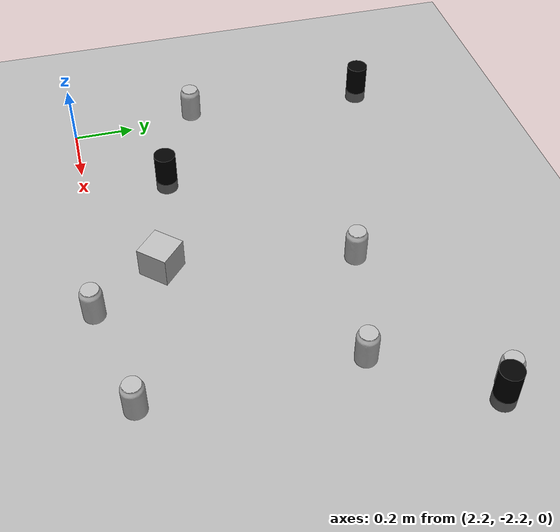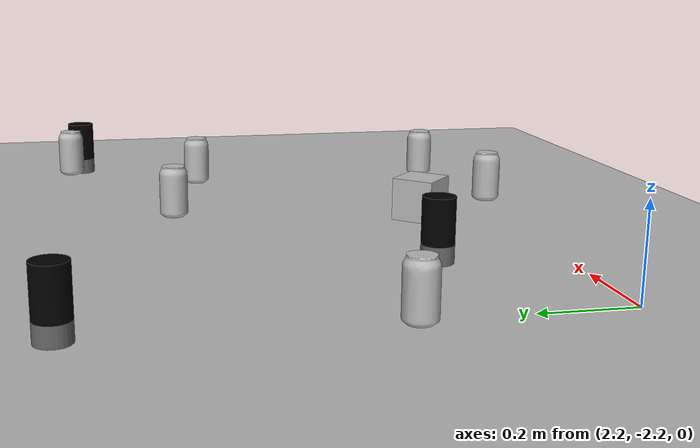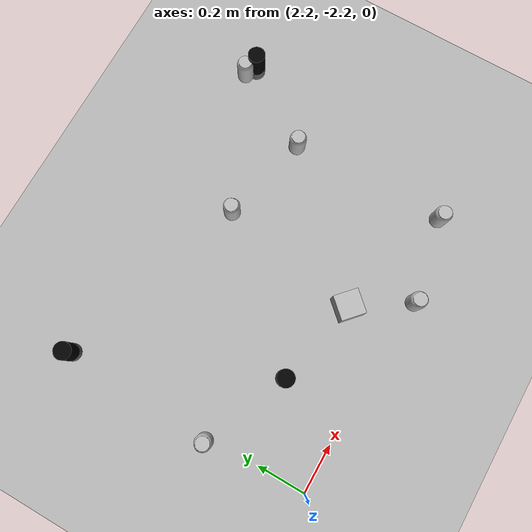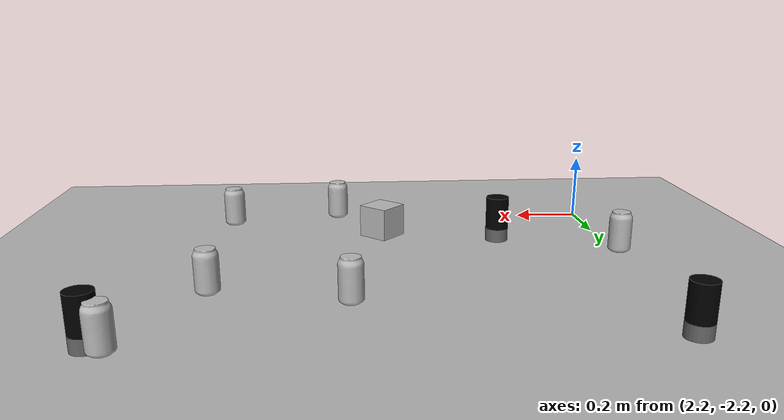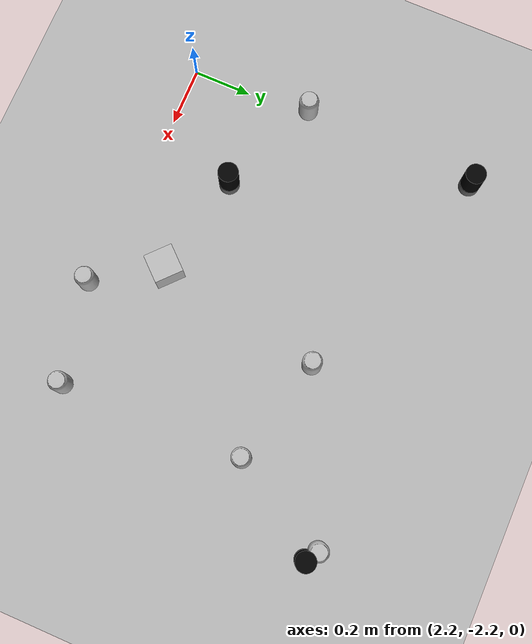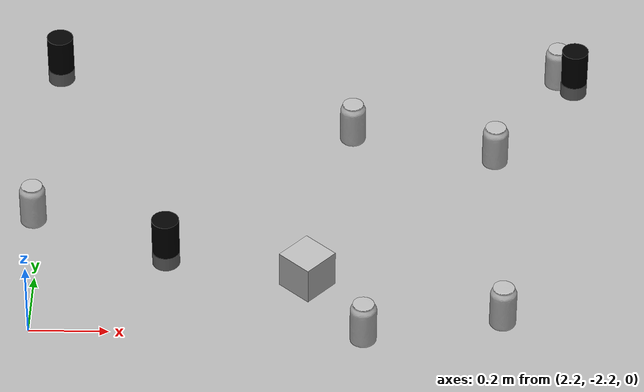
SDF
<sdf version="1.9">
 <world name="default">
  <model name="ground_plane">
   <static>true</static>
   <link name="link">
    <collision name="collision">
     <geometry><plane><normal>0 0 1</normal><size>100 100</size></plane></geometry>
     <surface>
      <contact><collide_bitmask>65535</collide_bitmask></contact>
      <friction><ode><mu>100</mu><mu2>50</mu2></ode></friction>
     </surface>
    </collision>
    <visual name="visual">
     <cast_shadows>false</cast_shadows>
     <geometry><plane><normal>0 0 1</normal><size>100 100</size></plane></geometry>
     <material>
      <ambient>0.3 0.3 0.3 1</ambient>
      <diffuse>0.7 0.7 0.7 1</diffuse>
      <specular>0.01 0.01 0.01 1</specular>
     </material>
    </visual>
    <inertial>
     <mass>1</mass>
     <inertia><ixx>1</ixx><ixy>0</ixy><ixz>0</ixz><iyy>1</iyy><iyz>0</iyz><izz>1</izz></inertia>
    </inertial>
   </link>
  </model>
  <model name="coke_2">
   <pose>2.1814229748695912 -1.7816322041547088 0 0 0 1.5579393369413672</pose>
   <link name="link">
    <inertial>
     <pose>0 0 0.06 0 0 0</pose>
     <mass>0.014</mass>
     <inertia>
      <ixx>0.00055575</ixx>
      <ixy>0</ixy>
      <ixz>0</ixz>
      <iyy>0.00055575</iyy>
      <iyz>0</iyz>
      <izz>0.0001755</izz>
     </inertia>
    </inertial>
    <collision name="collision">
     <pose>0.003937 0.0047244 -0.18 0 0 0</pose>
     <geometry><mesh><uri>coke_can.dae</uri></mesh></geometry>
     <surface>
      <friction><ode><mu>30.0</mu><mu2>30.0</mu2></ode></friction>
      <contact>
       <ode><kp>10000000.0</kp><kd>1.0</kd><min_depth>0.001</min_depth><max_vel>0.1</max_vel></ode>
      </contact>
     </surface>
    </collision>
    <visual name="visual">
     <pose>0.003937 0.0047244 -0.18 0 0 0</pose>
     <geometry><mesh><uri>coke_can.dae</uri></mesh></geometry>
     <plugin filename="ignition-gazebo-label-system" name="ignition::gazebo::systems::Label">
      <label>20</label>
     </plugin>
    </visual>
   </link>
  </model>
  <model name="coke_3">
   <pose>3.3809008028931506 -2.1583355610192236 0 0 0 6.003553893303458</pose>
   <link name="link">
    <inertial>
     <pose>0 0 0.06 0 0 0</pose>
     <mass>0.014</mass>
     <inertia>
      <ixx>0.00055575</ixx>
      <ixy>0</ixy>
      <ixz>0</ixz>
      <iyy>0.00055575</iyy>
      <iyz>0</iyz>
      <izz>0.0001755</izz>
     </inertia>
    </inertial>
    <collision name="collision">
     <pose>0.003937 0.0047244 -0.18 0 0 0</pose>
     <geometry><mesh><uri>coke_can.dae</uri></mesh></geometry>
     <surface>
      <friction><ode><mu>30.0</mu><mu2>30.0</mu2></ode></friction>
      <contact>
       <ode><kp>10000000.0</kp><kd>1.0</kd><min_depth>0.001</min_depth><max_vel>0.1</max_vel></ode>
      </contact>
     </surface>
    </collision>
    <visual name="visual">
     <pose>0.003937 0.0047244 -0.18 0 0 0</pose>
     <geometry><mesh><uri>coke_can.dae</uri></mesh></geometry>
     <plugin filename="ignition-gazebo-label-system" name="ignition::gazebo::systems::Label">
      <label>20</label>
     </plugin>
    </visual>
   </link>
  </model>
  <model name="coke_4">
   <pose>3.5441015637375815 -1.1767779151665994 0 0 0 2.0650444180560794</pose>
   <link name="link">
    <inertial>
     <pose>0 0 0.06 0 0 0</pose>
     <mass>0.014</mass>
     <inertia>
      <ixx>0.00055575</ixx>
      <ixy>0</ixy>
      <ixz>0</ixz>
      <iyy>0.00055575</iyy>
      <iyz>0</iyz>
      <izz>0.0001755</izz>
     </inertia>
    </inertial>
    <collision name="collision">
     <pose>0.003937 0.0047244 -0.18 0 0 0</pose>
     <geometry><mesh><uri>coke_can.dae</uri></mesh></geometry>
     <surface>
      <friction><ode><mu>30.0</mu><mu2>30.0</mu2></ode></friction>
      <contact>
       <ode><kp>10000000.0</kp><kd>1.0</kd><min_depth>0.001</min_depth><max_vel>0.1</max_vel></ode>
      </contact>
     </surface>
    </collision>
    <visual name="visual">
     <pose>0.003937 0.0047244 -0.18 0 0 0</pose>
     <geometry><mesh><uri>coke_can.dae</uri></mesh></geometry>
     <plugin filename="ignition-gazebo-label-system" name="ignition::gazebo::systems::Label">
      <label>20</label>
     </plugin>
    </visual>
   </link>
  </model>
  <model name="coke_5">
   <pose>3.000026214638232 -1.4269974407189119 0 0 0 6.096186986916386</pose>
   <link name="link">
    <inertial>
     <pose>0 0 0.06 0 0 0</pose>
     <mass>0.014</mass>
     <inertia>
      <ixx>0.00055575</ixx>
      <ixy>0</ixy>
      <ixz>0</ixz>
      <iyy>0.00055575</iyy>
      <iyz>0</iyz>
      <izz>0.0001755</izz>
     </inertia>
    </inertial>
    <collision name="collision">
     <pose>0.003937 0.0047244 -0.18 0 0 0</pose>
     <geometry><mesh><uri>coke_can.dae</uri></mesh></geometry>
     <surface>
      <friction><ode><mu>30.0</mu><mu2>30.0</mu2></ode></friction>
      <contact>
       <ode><kp>10000000.0</kp><kd>1.0</kd><min_depth>0.001</min_depth><max_vel>0.1</max_vel></ode>
      </contact>
     </surface>
    </collision>
    <visual name="visual">
     <pose>0.003937 0.0047244 -0.18 0 0 0</pose>
     <geometry><mesh><uri>coke_can.dae</uri></mesh></geometry>
     <plugin filename="ignition-gazebo-label-system" name="ignition::gazebo::systems::Label">
      <label>20</label>
     </plugin>
    </visual>
   </link>
  </model>
  <model name="coke_6">
   <pose>3.0334758052280004 -2.2264213790818657 0 0 0 0.26307758470738635</pose>
   <link name="link">
    <inertial>
     <pose>0 0 0.06 0 0 0</pose>
     <mass>0.014</mass>
     <inertia>
      <ixx>0.00055575</ixx>
      <ixy>0</ixy>
      <ixz>0</ixz>
      <iyy>0.00055575</iyy>
      <iyz>0</iyz>
      <izz>0.0001755</izz>
     </inertia>
    </inertial>
    <collision name="collision">
     <pose>0.003937 0.0047244 -0.18 0 0 0</pose>
     <geometry><mesh><uri>coke_can.dae</uri></mesh></geometry>
     <surface>
      <friction><ode><mu>30.0</mu><mu2>30.0</mu2></ode></friction>
      <contact>
       <ode><kp>10000000.0</kp><kd>1.0</kd><min_depth>0.001</min_depth><max_vel>0.1</max_vel></ode>
      </contact>
     </surface>
    </collision>
    <visual name="visual">
     <pose>0.003937 0.0047244 -0.18 0 0 0</pose>
     <geometry><mesh><uri>coke_can.dae</uri></mesh></geometry>
     <plugin filename="ignition-gazebo-label-system" name="ignition::gazebo::systems::Label">
      <label>20</label>
     </plugin>
    </visual>
   </link>
  </model>
  <model name="coke_7">
   <pose>3.371847778742837 -1.5176617158855559 0 0 0 0.3342988323338399</pose>
   <link name="link">
    <inertial>
     <pose>0 0 0.06 0 0 0</pose>
     <mass>0.014</mass>
     <inertia>
      <ixx>0.00055575</ixx>
      <ixy>0</ixy>
      <ixz>0</ixz>
      <iyy>0.00055575</iyy>
      <iyz>0</iyz>
      <izz>0.0001755</izz>
     </inertia>
    </inertial>
    <collision name="collision">
     <pose>0.003937 0.0047244 -0.18 0 0 0</pose>
     <geometry><mesh><uri>coke_can.dae</uri></mesh></geometry>
     <surface>
      <friction><ode><mu>30.0</mu><mu2>30.0</mu2></ode></friction>
      <contact>
       <ode><kp>10000000.0</kp><kd>1.0</kd><min_depth>0.001</min_depth><max_vel>0.1</max_vel></ode>
      </contact>
     </surface>
    </collision>
    <visual name="visual">
     <pose>0.003937 0.0047244 -0.18 0 0 0</pose>
     <geometry><mesh><uri>coke_can.dae</uri></mesh></geometry>
     <plugin filename="ignition-gazebo-label-system" name="ignition::gazebo::systems::Label">
      <label>20</label>
     </plugin>
    </visual>
   </link>
  </model>
  <model name="light_0">
   <pose>3.5879323729811583 -1.2050745597364338 0 0 0 0</pose>
   <static>false</static>
   <link name="base">
    <pose>0.0 0.0 0.02 0.0 0 0</pose>
    <collision name="collision">
     <geometry><cylinder><radius>.035</radius><length>.04</length></cylinder></geometry>
    </collision>
    <inertial>
     <mass>10</mass>
     <inertia>
      <ixx>0.004395833333333333</ixx>
      <ixy>0.0</ixy>
      <ixz>0.0</ixz>
      <iyy>0.004395833333333333</iyy>
      <iyz>0.0</iyz>
      <izz>0.006125</izz>
     </inertia>
    </inertial>
    <visual name="visual">
     <geometry><cylinder><radius>.035</radius><length>.04</length></cylinder></geometry>
     <material>
      <ambient>0.4 0.4 0.4 1</ambient>
      <diffuse>0.4 0.4 0.4 1</diffuse>
      <specular>0.4 0.4 0.4 0</specular>
      <emissive>0.6 0.6 0.4 1</emissive>
     </material>
     <plugin filename="ignition-gazebo-label-system" name="ignition::gazebo::systems::Label">
      <label>10</label>
     </plugin>
    </visual>
   </link>
   <link name="light">
    <pose>0 0. 0.09 0 0 0</pose>
    <collision name="collision">
     <geometry><cylinder><radius>.035</radius><length>.1</length></cylinder></geometry>
    </collision>
    <inertial>
     <mass>10</mass>
     <inertia>
      <ixx>0.01139583333333333</ixx>
      <ixy>0.0</ixy>
      <ixz>0.0</ixz>
      <iyy>0.01139583333333333</iyy>
      <iyz>0.0</iyz>
      <izz>0.006125</izz>
     </inertia>
    </inertial>
    <visual name="visual">
     <geometry><cylinder><radius>.035</radius><length>.1</length></cylinder></geometry>
     <material>
      <ambient>0 0 0 1</ambient>
      <diffuse>0 0 0 1</diffuse>
      <specular>0 0 0 0</specular>
      <emissive>1 0.5 0 1</emissive>
     </material>
     <plugin filename="ignition-gazebo-label-system" name="ignition::gazebo::systems::Label">
      <label>10</label>
     </plugin>
    </visual>
   </link>
   <visual name="visual">
    <plugin filename="ignition-gazebo-label-system" name="ignition::gazebo::systems::Label">
     <label>10</label>
    </plugin>
   </visual>
   <joint name="light_joint" type="fixed">
    <pose>0 0 -0.05 .0 0 0</pose>
    <child>light</child>
    <parent>base</parent>
   </joint>
  </model>
  <model name="light_4">
   <pose>2.5302363729279316 -1.9296457743530606 0 0 0 0</pose>
   <static>false</static>
   <link name="base">
    <pose>0.0 0.0 0.02 0.0 0 0</pose>
    <collision name="collision">
     <geometry><cylinder><radius>.035</radius><length>.04</length></cylinder></geometry>
    </collision>
    <inertial>
     <mass>10</mass>
     <inertia>
      <ixx>0.004395833333333333</ixx>
      <ixy>0.0</ixy>
      <ixz>0.0</ixz>
      <iyy>0.004395833333333333</iyy>
      <iyz>0.0</iyz>
      <izz>0.006125</izz>
     </inertia>
    </inertial>
    <visual name="visual">
     <geometry><cylinder><radius>.035</radius><length>.04</length></cylinder></geometry>
     <material>
      <ambient>0.4 0.4 0.4 1</ambient>
      <diffuse>0.4 0.4 0.4 1</diffuse>
      <specular>0.4 0.4 0.4 0</specular>
      <emissive>0.6 0.6 0.4 1</emissive>
     </material>
     <plugin filename="ignition-gazebo-label-system" name="ignition::gazebo::systems::Label">
      <label>10</label>
     </plugin>
    </visual>
   </link>
   <link name="light">
    <pose>0 0. 0.09 0 0 0</pose>
    <collision name="collision">
     <geometry><cylinder><radius>.035</radius><length>.1</length></cylinder></geometry>
    </collision>
    <inertial>
     <mass>10</mass>
     <inertia>
      <ixx>0.01139583333333333</ixx>
      <ixy>0.0</ixy>
      <ixz>0.0</ixz>
      <iyy>0.01139583333333333</iyy>
      <iyz>0.0</iyz>
      <izz>0.006125</izz>
     </inertia>
    </inertial>
    <visual name="visual">
     <geometry><cylinder><radius>.035</radius><length>.1</length></cylinder></geometry>
     <material>
      <ambient>0 0 0 1</ambient>
      <diffuse>0 0 0 1</diffuse>
      <specular>0 0 0 0</specular>
      <emissive>1 0.5 0 1</emissive>
     </material>
     <plugin filename="ignition-gazebo-label-system" name="ignition::gazebo::systems::Label">
      <label>10</label>
     </plugin>
    </visual>
   </link>
   <visual name="visual">
    <plugin filename="ignition-gazebo-label-system" name="ignition::gazebo::systems::Label">
     <label>10</label>
    </plugin>
   </visual>
   <joint name="light_joint" type="fixed">
    <pose>0 0 -0.05 .0 0 0</pose>
    <child>light</child>
    <parent>base</parent>
   </joint>
  </model>
  <model name="light_5">
   <pose>2.2124817711436267 -1.1704841150021923 0 0 0 0</pose>
   <static>false</static>
   <link name="base">
    <pose>0.0 0.0 0.02 0.0 0 0</pose>
    <collision name="collision">
     <geometry><cylinder><radius>.035</radius><length>.04</length></cylinder></geometry>
    </collision>
    <inertial>
     <mass>10</mass>
     <inertia>
      <ixx>0.004395833333333333</ixx>
      <ixy>0.0</ixy>
      <ixz>0.0</ixz>
      <iyy>0.004395833333333333</iyy>
      <iyz>0.0</iyz>
      <izz>0.006125</izz>
     </inertia>
    </inertial>
    <visual name="visual">
     <geometry><cylinder><radius>.035</radius><length>.04</length></cylinder></geometry>
     <material>
      <ambient>0.4 0.4 0.4 1</ambient>
      <diffuse>0.4 0.4 0.4 1</diffuse>
      <specular>0.4 0.4 0.4 0</specular>
      <emissive>0.6 0.6 0.4 1</emissive>
     </material>
     <plugin filename="ignition-gazebo-label-system" name="ignition::gazebo::systems::Label">
      <label>10</label>
     </plugin>
    </visual>
   </link>
   <link name="light">
    <pose>0 0. 0.09 0 0 0</pose>
    <collision name="collision">
     <geometry><cylinder><radius>.035</radius><length>.1</length></cylinder></geometry>
    </collision>
    <inertial>
     <mass>10</mass>
     <inertia>
      <ixx>0.01139583333333333</ixx>
      <ixy>0.0</ixy>
      <ixz>0.0</ixz>
      <iyy>0.01139583333333333</iyy>
      <iyz>0.0</iyz>
      <izz>0.006125</izz>
     </inertia>
    </inertial>
    <visual name="visual">
     <geometry><cylinder><radius>.035</radius><length>.1</length></cylinder></geometry>
     <material>
      <ambient>0 0 0 1</ambient>
      <diffuse>0 0 0 1</diffuse>
      <specular>0 0 0 0</specular>
      <emissive>1 0.5 0 1</emissive>
     </material>
     <plugin filename="ignition-gazebo-label-system" name="ignition::gazebo::systems::Label">
      <label>10</label>
     </plugin>
    </visual>
   </link>
   <visual name="visual">
    <plugin filename="ignition-gazebo-label-system" name="ignition::gazebo::systems::Label">
     <label>10</label>
    </plugin>
   </visual>
   <joint name="light_joint" type="fixed">
    <pose>0 0 -0.05 .0 0 0</pose>
    <child>light</child>
    <parent>base</parent>
   </joint>
  </model>
  <model name="camera">
   <pose>2.9610504382359415 -2.004233702019844 0 0 0 2.401006914713254</pose>
   <pose>2 0 1.0 0 0.0 3.14</pose>
   <link name="link">
    <pose>0.05 0.05 0.05 0 0 0</pose>
    <inertial>
     <mass>0.1</mass>
     <inertia><ixx>0.000166667</ixx><iyy>0.000166667</iyy><izz>0.000166667</izz></inertia>
    </inertial>
    <collision name="collision"><geometry><box><size>0.1 0.1 0.1</size></box></geometry></collision>
    <visual name="visual"><geometry><box><size>0.1 0.1 0.1</size></box></geometry></visual>
    <sensor name="boundingbox_camera" type="boundingbox_camera">
     <topic>boxes</topic>
     <camera>
      <box_type>2d</box_type>
      <horizontal_fov>1.047</horizontal_fov>
      <image><width>640</width><height>480</height></image>
      <clip><near>0.1</near><far>10</far></clip>
      <save enabled="true"><path>dataset/</path></save>
     </camera>
     <always_on>1</always_on>
     <update_rate>30</update_rate>
     <visualize>true</visualize>
    </sensor>
   </link>
  </model>
 </world>
</sdf>
